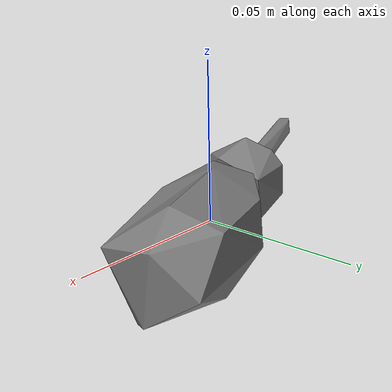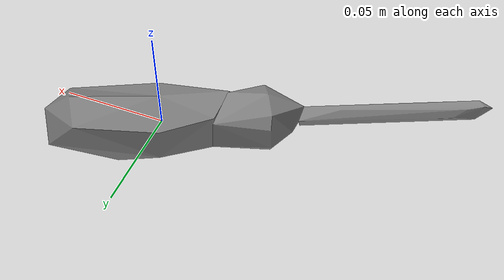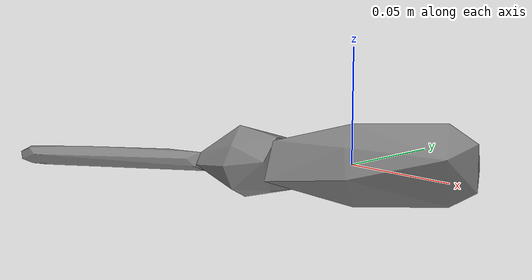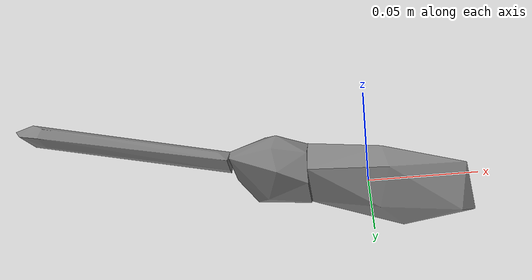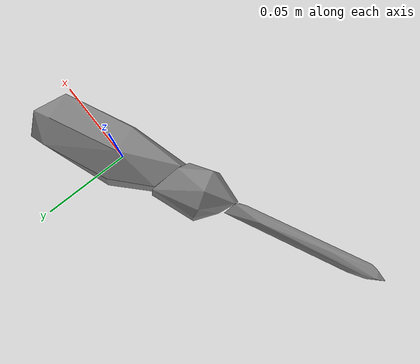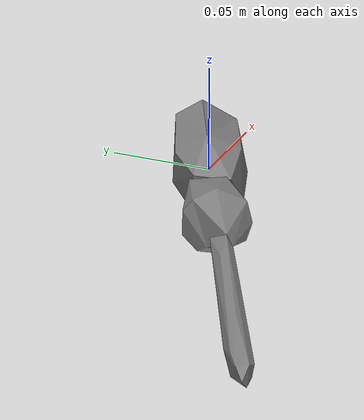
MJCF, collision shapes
<mujoco model="phillips_screwdriver">
  <compiler angle="radian" />

  <asset>
    <mesh name="phillips_screwdriver_visual_mesh" file="phillips_screwdriver/textured.obj" />
    <mesh name="phillips_screwdriver_collision_mesh_0" file="phillips_screwdriver/textured_coacd_0.stl" />
    <mesh name="phillips_screwdriver_collision_mesh_1" file="phillips_screwdriver/textured_coacd_1.stl" />
    <mesh name="phillips_screwdriver_collision_mesh_2" file="phillips_screwdriver/textured_coacd_2.stl" />
    <texture name="phillips_screwdriver_texture" type="2d" file="phillips_screwdriver/texture_map.png" />
    <material name="phillips_screwdriver_material" texture="phillips_screwdriver_texture" />
  </asset>

  <worldbody>
    <body name="phillips_screwdriver" pos="0 0 0" euler="0 0 0">
      <freejoint name="phillips_screwdriver_joint" />
      <geom name="phillips_screwdriver_visual_geom" type="mesh" mesh="phillips_screwdriver_visual_mesh" material="phillips_screwdriver_material" pos="-0.0026626279153952586 -0.02222386939344705 -0.01637227553798352" euler="0 0 0" contype="0" conaffinity="0" group="0" />
      <geom name="phillips_screwdriver_collision_geom_0" type="mesh" mesh="phillips_screwdriver_collision_mesh_0" pos="-0.0026626279153952586 -0.02222386939344705 -0.01637227553798352" euler="0 0 0" contype="1" conaffinity="1" group="3" />
      <geom name="phillips_screwdriver_collision_geom_1" type="mesh" mesh="phillips_screwdriver_collision_mesh_1" pos="-0.0026626279153952586 -0.02222386939344705 -0.01637227553798352" euler="0 0 0" contype="1" conaffinity="1" group="3" />
      <geom name="phillips_screwdriver_collision_geom_2" type="mesh" mesh="phillips_screwdriver_collision_mesh_2" pos="-0.0026626279153952586 -0.02222386939344705 -0.01637227553798352" euler="0 0 0" contype="1" conaffinity="1" group="3" />
      <inertial pos="0 0 0" euler="0 0 0" mass="0.097" diaginertia="0.001 0.001 0.001" />
    </body>
  </worldbody>
</mujoco>
